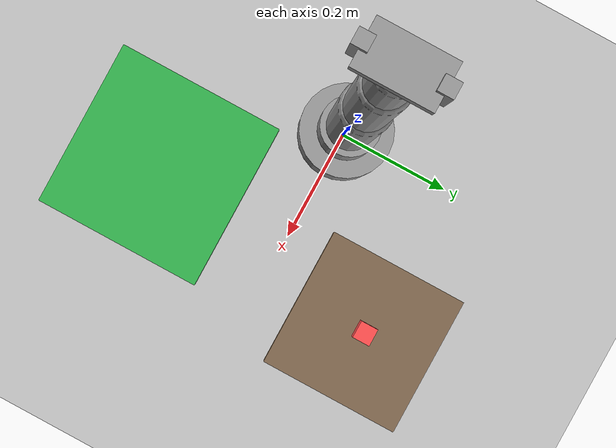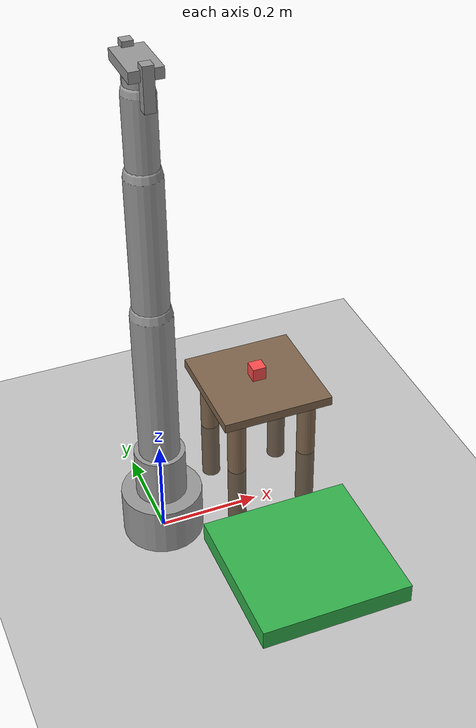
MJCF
<mujoco model="warehouse">
  <compiler angle="radian" meshdir="meshes"/>

  <option timestep="0.002" gravity="0 0 -9.81"/>

  <default>
    <joint damping="0.5" armature="0.1"/>
    <geom condim="3" friction="1 0.5 0.5"/>
    <default class="visual">
      <geom contype="0" conaffinity="0" group="1"/>
    </default>
  </default>

  <asset>
    <texture type="skybox" builtin="gradient" rgb1=".3 .5 .7" rgb2="1 1 1" width="32" height="512"/>
    <texture name="floor_tex" type="2d" builtin="checker" rgb1="0.2 0.2 0.2" rgb2="0.3 0.3 0.3" width="512" height="512"/>
    <material name="floor_mat" texture="floor_tex" texrepeat="5 5"/>
    <material name="bin_mat" rgba="0.8 0.2 0.2 1"/>
    <material name="robot_mat" rgba="0.6 0.6 0.6 1"/>
    <material name="package_mat" rgba="1 0.3 0.3 1"/>
  </asset>

  <worldbody>
    <!-- Floor -->
    <geom name="floor" type="plane" size="2 2 0.1" material="floor_mat"/>

    <!-- Delivery Platform (flat surface where package should be placed) -->
    <body name="bin_A" pos="0.20 -0.25 0.05">
      <geom name="bin_A_base" type="box" size="0.15 0.15 0.02" rgba="0.2 0.7 0.3 1" contype="1" conaffinity="1"/>
    </body>

    <!-- 6-DOF Robot Arm -->
    <body name="robot_base" pos="0 0 0.05">
      <geom name="base_geom" type="cylinder" size="0.08 0.05" material="robot_mat"/>

      <!-- Joint 1: Base rotation (yaw) -->
      <body name="link1" pos="0 0 0.05">
        <joint name="joint1" type="hinge" axis="0 0 1" range="-3.14 3.14"/>
        <geom name="link1_geom" type="cylinder" size="0.05 0.1" material="robot_mat"/>

        <!-- Joint 2: Shoulder (pitch) -->
        <body name="link2" pos="0 0 0.1">
          <joint name="joint2" type="hinge" axis="0 1 0" range="-1.57 1.57"/>
          <geom name="link2_geom" type="capsule" size="0.04" fromto="0 0 0 0 0 0.32" material="robot_mat"/>

          <!-- Joint 3: Elbow (pitch) -->
          <body name="link3" pos="0 0 0.32">
            <joint name="joint3" type="hinge" axis="0 1 0" range="-2.5 2.5"/>
            <geom name="link3_geom" type="capsule" size="0.035" fromto="0 0 0 0 0 0.28" material="robot_mat"/>

            <!-- Joint 4: Wrist 1 (pitch) -->
            <body name="link4" pos="0 0 0.28">
              <joint name="joint4" type="hinge" axis="0 1 0" range="-3.14 3.14"/>
              <geom name="link4_geom" type="capsule" size="0.03" fromto="0 0 0 0 0 0.15" material="robot_mat"/>

              <!-- Joint 5: Wrist 2 (yaw) -->
              <body name="link5" pos="0 0 0.15">
                <joint name="joint5" type="hinge" axis="0 0 1" range="-3.14 3.14"/>
                <geom name="link5_geom" type="cylinder" size="0.025 0.03" material="robot_mat"/>

                <!-- Joint 6: Wrist 3 (roll) -->
                <body name="link6" pos="0 0 0.03">
                  <joint name="joint6" type="hinge" axis="0 1 0" range="-3.14 3.14"/>
                  <geom name="link6_geom" type="cylinder" size="0.02 0.02" material="robot_mat"/>

                  <!-- Gripper Base -->
                  <body name="gripper_base" pos="0 0 0.02">
                    <geom name="gripper_base_geom" type="box" size="0.03 0.05 0.01" material="robot_mat"/>

                    <!-- Left Finger: starts far (y=+0.05), extends downward for better grip -->
                    <body name="finger_left" pos="0 0.05 -0.02">
                      <joint name="finger_left_joint" type="slide" axis="0 -1 0" range="0 0.04"/>
                      <geom name="finger_left_geom" type="box" size="0.01 0.01 0.04" material="robot_mat" friction="5 2 2"/>
                    </body>

                    <!-- Right Finger: starts far (y=-0.05), extends downward for better grip -->
                    <body name="finger_right" pos="0 -0.05 -0.02">
                      <joint name="finger_right_joint" type="slide" axis="0 1 0" range="0 0.04"/>
                      <geom name="finger_right_geom" type="box" size="0.01 0.01 0.04" material="robot_mat" friction="5 2 2"/>
                    </body>
                  </body>
                </body>
              </body>
            </body>
          </body>
        </body>
      </body>
    </body>

    <!-- Table (moved closer to robot for easier reach) -->
    <body name="table" pos="0.28 0.18 0.15">
      <geom name="table_top" type="box" size="0.12 0.12 0.01" rgba="0.5 0.4 0.3 1" contype="1" conaffinity="1"/>
      <geom name="table_leg1" type="cylinder" size="0.02 0.14" pos="-0.08 -0.08 -0.15" rgba="0.5 0.4 0.3 1"/>
      <geom name="table_leg2" type="cylinder" size="0.02 0.14" pos="0.08 -0.08 -0.15" rgba="0.5 0.4 0.3 1"/>
      <geom name="table_leg3" type="cylinder" size="0.02 0.14" pos="-0.08 0.08 -0.15" rgba="0.5 0.4 0.3 1"/>
      <geom name="table_leg4" type="cylinder" size="0.02 0.14" pos="0.08 0.08 -0.15" rgba="0.5 0.4 0.3 1"/>
    </body>

    <!-- Package (raised slightly to avoid initial penetration) -->
    <body name="package_0" pos="0.28 0.18 0.18">
      <freejoint name="package_0_joint"/>
      <geom name="package_0_geom" type="box" size="0.015 0.015 0.015" mass="0.03" material="package_mat" friction="5 2 2" contype="1" conaffinity="1" solref="0.01 1" solimp="0.99 0.99 0.01"/>
    </body>

  </worldbody>

  <actuator>
    <velocity name="joint1_vel" joint="joint1" kv="50"/>
    <velocity name="joint2_vel" joint="joint2" kv="50"/>
    <velocity name="joint3_vel" joint="joint3" kv="50"/>
    <velocity name="joint4_vel" joint="joint4" kv="30"/>
    <velocity name="joint5_vel" joint="joint5" kv="30"/>
    <velocity name="joint6_vel" joint="joint6" kv="20"/>
    <!-- Two gripper actuators, both receive same control signal -->
    <!-- High kp for strong grip force -->
    <position name="gripper_left" joint="finger_left_joint" kp="800"/>
    <position name="gripper_right" joint="finger_right_joint" kp="800"/>
  </actuator>
</mujoco>
